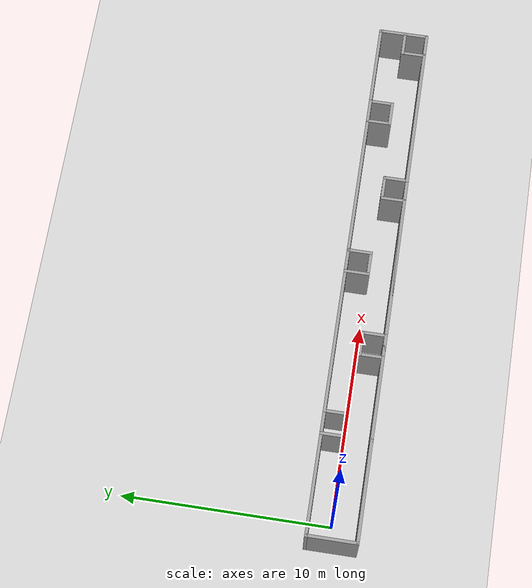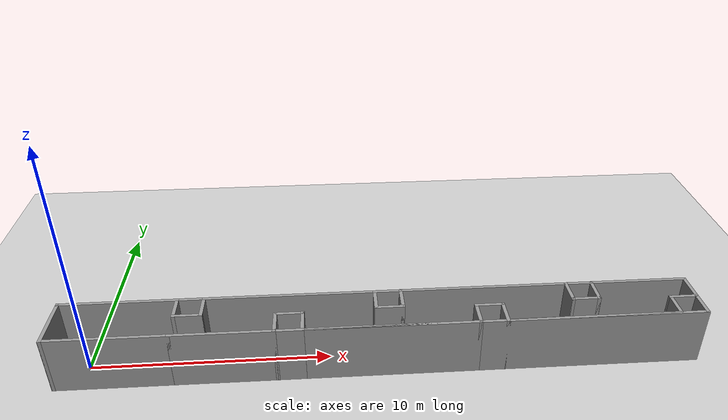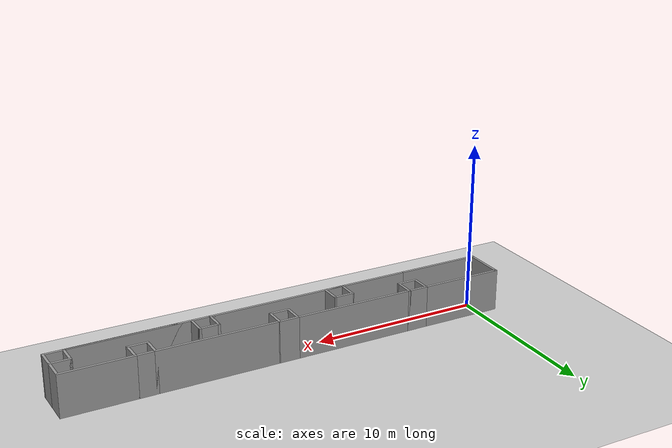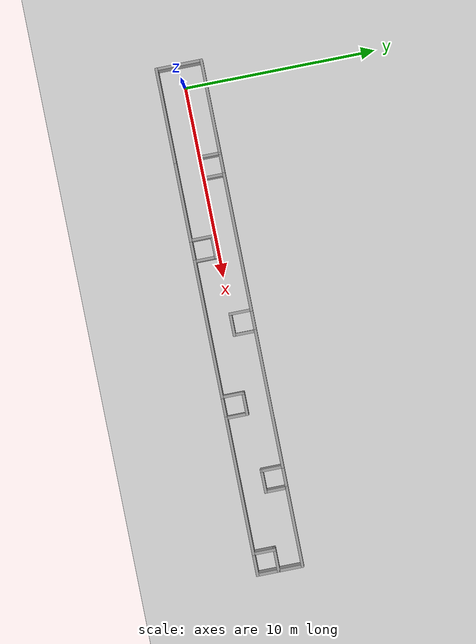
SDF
<sdf version="1.6">
 <world name="default">
  <light name="sun" type="directional">
   <pose>0 0 10 0 -0 0</pose>
   <diffuse>0.8 0.8 0.8 1</diffuse>
   <specular>0.1 0.1 0.1 1</specular>
   <attenuation>
    <range>1000</range>
    <constant>0.9</constant>
    <linear>0.01</linear>
    <quadratic>0.001</quadratic>
   </attenuation>
   <direction>-0.5 0.5 -1</direction>
  </light>
  <model name="ground_plane">
   <static>1</static>
   <link name="link">
    <collision name="collision">
     <geometry><plane><normal>0 0 1</normal><size>100 100</size></plane></geometry>
     <surface><friction><ode><mu>100</mu><mu2>50</mu2></ode></friction></surface>
    </collision>
    <visual name="visual">
     <cast_shadows>0</cast_shadows>
     <geometry><plane><normal>0 0 1</normal><size>100 100</size></plane></geometry>
     <material>
      <script><uri>file://media/materials/scripts/gazebo.material</uri><name>Gazebo/Grey</name></script>
     </material>
    </visual>
   </link>
  </model>
  <gravity>0 0 -9.8</gravity>
  <magnetic_field>6e-06 2.3e-05 -4.2e-05</magnetic_field>
  <atmosphere type="adiabatic"/>
  <physics name="default_physics" default="0" type="ode">
   <max_step_size>0.001</max_step_size>
   <real_time_factor>1</real_time_factor>
   <real_time_update_rate>1000</real_time_update_rate>
  </physics>
  <scene><ambient>0.4 0.4 0.4 1</ambient><background>0.7 0.7 0.7 1</background><shadows>1</shadows></scene>
  <spherical_coordinates>
   <surface_model>EARTH_WGS84</surface_model>
   <latitude_deg>0</latitude_deg>
   <longitude_deg>0</longitude_deg>
   <elevation>0</elevation>
   <heading_deg>0</heading_deg>
  </spherical_coordinates>
  <model name="medium_s_world">
   <pose>12.1054 -0.077905 0 0 -0 0</pose>
   <link name="Wall_133">
    <collision name="Wall_133_Collision">
     <geometry><box><size>2.5 0.15 2.5</size></box></geometry>
     <pose>0 0 1.25 0 -0 0</pose>
    </collision>
    <visual name="Wall_133_Visual">
     <pose>0 0 1.25 0 -0 0</pose>
     <geometry><box><size>2.5 0.15 2.5</size></box></geometry>
     <material>
      <script><uri>file://media/materials/scripts/gazebo.material</uri><name>Gazebo/Grey</name></script>
      <ambient>1 1 1 1</ambient>
     </material>
    </visual>
    <pose>-13.225 0 0 0 0 -1.5708</pose>
   </link>
   <link name="Wall_134">
    <collision name="Wall_134_Collision">
     <geometry><box><size>5 0.15 2.5</size></box></geometry>
     <pose>0 0 1.25 0 -0 0</pose>
    </collision>
    <visual name="Wall_134_Visual">
     <pose>0 0 1.25 0 -0 0</pose>
     <geometry><box><size>5 0.15 2.5</size></box></geometry>
     <material>
      <script><uri>file://media/materials/scripts/gazebo.material</uri><name>Gazebo/Grey</name></script>
      <ambient>1 1 1 1</ambient>
     </material>
    </visual>
    <pose>-10.8 -1.175 0 0 -0 0</pose>
   </link>
   <link name="Wall_138">
    <collision name="Wall_138_Collision">
     <geometry><box><size>5 0.15 2.5</size></box></geometry>
     <pose>0 0 1.25 0 -0 0</pose>
    </collision>
    <visual name="Wall_138_Visual">
     <pose>0 0 1.25 0 -0 0</pose>
     <geometry><box><size>5 0.15 2.5</size></box></geometry>
     <material>
      <script><uri>file://media/materials/scripts/gazebo.material</uri><name>Gazebo/Grey</name></script>
      <ambient>1 1 1 1</ambient>
     </material>
    </visual>
    <pose>-10.8 1.175 0 0 -0 3.14159</pose>
   </link>
   <link name="Wall_140">
    <collision name="Wall_140_Collision">
     <geometry><box><size>1.25 0.15 2.5</size></box></geometry>
     <pose>0 0 1.25 0 -0 0</pose>
    </collision>
    <visual name="Wall_140_Visual">
     <pose>0 0 1.25 0 -0 0</pose>
     <geometry><box><size>1.25 0.15 2.5</size></box></geometry>
     <material>
      <script><uri>file://media/materials/scripts/gazebo.material</uri><name>Gazebo/Grey</name></script>
      <ambient>1 1 1 1</ambient>
     </material>
    </visual>
    <pose>-7.825 1.175 0 0 -0 0</pose>
   </link>
   <link name="Wall_141">
    <collision name="Wall_141_Collision">
     <geometry><box><size>1.25 0.15 2.5</size></box></geometry>
     <pose>0 0 1.25 0 -0 0</pose>
    </collision>
    <visual name="Wall_141_Visual">
     <pose>0 0 1.25 0 -0 0</pose>
     <geometry><box><size>1.25 0.15 2.5</size></box></geometry>
     <material>
      <script><uri>file://media/materials/scripts/gazebo.material</uri><name>Gazebo/Grey</name></script>
      <ambient>1 1 1 1</ambient>
     </material>
    </visual>
    <pose>-7.275 0.625 0 0 0 -1.5708</pose>
   </link>
   <link name="Wall_142">
    <collision name="Wall_142_Collision">
     <geometry><box><size>1.25 0.15 2.5</size></box></geometry>
     <pose>0 0 1.25 0 -0 0</pose>
    </collision>
    <visual name="Wall_142_Visual">
     <pose>0 0 1.25 0 -0 0</pose>
     <geometry><box><size>1.25 0.15 2.5</size></box></geometry>
     <material>
      <script><uri>file://media/materials/scripts/gazebo.material</uri><name>Gazebo/Grey</name></script>
      <ambient>1 1 1 1</ambient>
     </material>
    </visual>
    <pose>-7.825 0.075 0 0 -0 3.14159</pose>
   </link>
   <link name="Wall_143">
    <collision name="Wall_143_Collision">
     <geometry><box><size>1.25 0.15 2.5</size></box></geometry>
     <pose>0 0 1.25 0 -0 0</pose>
    </collision>
    <visual name="Wall_143_Visual">
     <pose>0 0 1.25 0 -0 0</pose>
     <geometry><box><size>1.25 0.15 2.5</size></box></geometry>
     <material>
      <script><uri>file://media/materials/scripts/gazebo.material</uri><name>Gazebo/Grey</name></script>
      <ambient>1 1 1 1</ambient>
     </material>
    </visual>
    <pose>-8.375 0.625 0 0 -0 1.5708</pose>
   </link>
   <link name="Wall_145">
    <collision name="Wall_145_Collision">
     <geometry><box><size>7.25 0.15 2.5</size></box></geometry>
     <pose>0 0 1.25 0 -0 0</pose>
    </collision>
    <visual name="Wall_145_Visual">
     <pose>0 0 1.25 0 -0 0</pose>
     <geometry><box><size>7.25 0.15 2.5</size></box></geometry>
     <material>
      <script><uri>file://media/materials/scripts/gazebo.material</uri><name>Gazebo/Grey</name></script>
      <ambient>1 1 1 1</ambient>
     </material>
    </visual>
    <pose>-3.725 1.175 0 0 -0 0</pose>
   </link>
   <link name="Wall_146">
    <collision name="Wall_146_Collision">
     <geometry><box><size>1.25 0.15 2.5</size></box></geometry>
     <pose>0 0 1.25 0 -0 0</pose>
    </collision>
    <visual name="Wall_146_Visual">
     <pose>0 0 1.25 0 -0 0</pose>
     <geometry><box><size>1.25 0.15 2.5</size></box></geometry>
     <material>
      <script><uri>file://media/materials/scripts/gazebo.material</uri><name>Gazebo/Grey</name></script>
      <ambient>1 1 1 1</ambient>
     </material>
    </visual>
    <pose>-0.175 0.625 0 0 0 -1.5708</pose>
   </link>
   <link name="Wall_147">
    <collision name="Wall_147_Collision">
     <geometry><box><size>1.25 0.15 2.5</size></box></geometry>
     <pose>0 0 1.25 0 -0 0</pose>
    </collision>
    <visual name="Wall_147_Visual">
     <pose>0 0 1.25 0 -0 0</pose>
     <geometry><box><size>1.25 0.15 2.5</size></box></geometry>
     <material>
      <script><uri>file://media/materials/scripts/gazebo.material</uri><name>Gazebo/Grey</name></script>
      <ambient>1 1 1 1</ambient>
     </material>
    </visual>
    <pose>0.375 0.075 0 0 -0 0</pose>
   </link>
   <link name="Wall_148">
    <collision name="Wall_148_Collision">
     <geometry><box><size>1.25 0.15 2.5</size></box></geometry>
     <pose>0 0 1.25 0 -0 0</pose>
    </collision>
    <visual name="Wall_148_Visual">
     <pose>0 0 1.25 0 -0 0</pose>
     <geometry><box><size>1.25 0.15 2.5</size></box></geometry>
     <material>
      <script><uri>file://media/materials/scripts/gazebo.material</uri><name>Gazebo/Grey</name></script>
      <ambient>1 1 1 1</ambient>
     </material>
    </visual>
    <pose>0.925 0.625 0 0 -0 1.5708</pose>
   </link>
   <link name="Wall_149">
    <collision name="Wall_149_Collision">
     <geometry><box><size>1.25 0.15 2.5</size></box></geometry>
     <pose>0 0 1.25 0 -0 0</pose>
    </collision>
    <visual name="Wall_149_Visual">
     <pose>0 0 1.25 0 -0 0</pose>
     <geometry><box><size>1.25 0.15 2.5</size></box></geometry>
     <material>
      <script><uri>file://media/materials/scripts/gazebo.material</uri><name>Gazebo/Grey</name></script>
      <ambient>1 1 1 1</ambient>
     </material>
    </visual>
    <pose>0.375 1.175 0 0 -0 3.14159</pose>
   </link>
   <link name="Wall_151">
    <collision name="Wall_151_Collision">
     <geometry><box><size>7.25 0.15 2.5</size></box></geometry>
     <pose>0 0 1.25 0 -0 0</pose>
    </collision>
    <visual name="Wall_151_Visual">
     <pose>0 0 1.25 0 -0 0</pose>
     <geometry><box><size>7.25 0.15 2.5</size></box></geometry>
     <material>
      <script><uri>file://media/materials/scripts/gazebo.material</uri><name>Gazebo/Grey</name></script>
      <ambient>1 1 1 1</ambient>
     </material>
    </visual>
    <pose>4.475 1.175 0 0 -0 0</pose>
   </link>
   <link name="Wall_152">
    <collision name="Wall_152_Collision">
     <geometry><box><size>1.25 0.15 2.5</size></box></geometry>
     <pose>0 0 1.25 0 -0 0</pose>
    </collision>
    <visual name="Wall_152_Visual">
     <pose>0 0 1.25 0 -0 0</pose>
     <geometry><box><size>1.25 0.15 2.5</size></box></geometry>
     <material>
      <script><uri>file://media/materials/scripts/gazebo.material</uri><name>Gazebo/Grey</name></script>
      <ambient>1 1 1 1</ambient>
     </material>
    </visual>
    <pose>8.025 0.625 0 0 0 -1.5708</pose>
   </link>
   <link name="Wall_153">
    <collision name="Wall_153_Collision">
     <geometry><box><size>1.25 0.15 2.5</size></box></geometry>
     <pose>0 0 1.25 0 -0 0</pose>
    </collision>
    <visual name="Wall_153_Visual">
     <pose>0 0 1.25 0 -0 0</pose>
     <geometry><box><size>1.25 0.15 2.5</size></box></geometry>
     <material>
      <script><uri>file://media/materials/scripts/gazebo.material</uri><name>Gazebo/Grey</name></script>
      <ambient>1 1 1 1</ambient>
     </material>
    </visual>
    <pose>8.575 0.075 0 0 -0 0</pose>
   </link>
   <link name="Wall_154">
    <collision name="Wall_154_Collision">
     <geometry><box><size>1.25 0.15 2.5</size></box></geometry>
     <pose>0 0 1.25 0 -0 0</pose>
    </collision>
    <visual name="Wall_154_Visual">
     <pose>0 0 1.25 0 -0 0</pose>
     <geometry><box><size>1.25 0.15 2.5</size></box></geometry>
     <material>
      <script><uri>file://media/materials/scripts/gazebo.material</uri><name>Gazebo/Grey</name></script>
      <ambient>1 1 1 1</ambient>
     </material>
    </visual>
    <pose>9.125 0.625 0 0 -0 1.5708</pose>
   </link>
   <link name="Wall_155">
    <collision name="Wall_155_Collision">
     <geometry><box><size>1.25 0.15 2.5</size></box></geometry>
     <pose>0 0 1.25 0 -0 0</pose>
    </collision>
    <visual name="Wall_155_Visual">
     <pose>0 0 1.25 0 -0 0</pose>
     <geometry><box><size>1.25 0.15 2.5</size></box></geometry>
     <material>
      <script><uri>file://media/materials/scripts/gazebo.material</uri><name>Gazebo/Grey</name></script>
      <ambient>1 1 1 1</ambient>
     </material>
    </visual>
    <pose>8.575 1.175 0 0 -0 3.14159</pose>
   </link>
   <link name="Wall_157">
    <collision name="Wall_157_Collision">
     <geometry><box><size>4.25 0.15 2.5</size></box></geometry>
     <pose>0 0 1.25 0 -0 0</pose>
    </collision>
    <visual name="Wall_157_Visual">
     <pose>0 0 1.25 0 -0 0</pose>
     <geometry><box><size>4.25 0.15 2.5</size></box></geometry>
     <material>
      <script><uri>file://media/materials/scripts/gazebo.material</uri><name>Gazebo/Grey</name></script>
      <ambient>1 1 1 1</ambient>
     </material>
    </visual>
    <pose>-6.325 -1.175 0 0 -0 0</pose>
   </link>
   <link name="Wall_158">
    <collision name="Wall_158_Collision">
     <geometry><box><size>1.25 0.15 2.5</size></box></geometry>
     <pose>0 0 1.25 0 -0 0</pose>
    </collision>
    <visual name="Wall_158_Visual">
     <pose>0 0 1.25 0 -0 0</pose>
     <geometry><box><size>1.25 0.15 2.5</size></box></geometry>
     <material>
      <script><uri>file://media/materials/scripts/gazebo.material</uri><name>Gazebo/Grey</name></script>
      <ambient>1 1 1 1</ambient>
     </material>
    </visual>
    <pose>-4.275 -0.625 0 0 -0 1.5708</pose>
   </link>
   <link name="Wall_159">
    <collision name="Wall_159_Collision">
     <geometry><box><size>1.25 0.15 2.5</size></box></geometry>
     <pose>0 0 1.25 0 -0 0</pose>
    </collision>
    <visual name="Wall_159_Visual">
     <pose>0 0 1.25 0 -0 0</pose>
     <geometry><box><size>1.25 0.15 2.5</size></box></geometry>
     <material>
      <script><uri>file://media/materials/scripts/gazebo.material</uri><name>Gazebo/Grey</name></script>
      <ambient>1 1 1 1</ambient>
     </material>
    </visual>
    <pose>-3.725 -0.075 0 0 -0 0</pose>
   </link>
   <link name="Wall_160">
    <collision name="Wall_160_Collision">
     <geometry><box><size>1.25 0.15 2.5</size></box></geometry>
     <pose>0 0 1.25 0 -0 0</pose>
    </collision>
    <visual name="Wall_160_Visual">
     <pose>0 0 1.25 0 -0 0</pose>
     <geometry><box><size>1.25 0.15 2.5</size></box></geometry>
     <material>
      <script><uri>file://media/materials/scripts/gazebo.material</uri><name>Gazebo/Grey</name></script>
      <ambient>1 1 1 1</ambient>
     </material>
    </visual>
    <pose>-3.175 -0.625 0 0 0 -1.5708</pose>
   </link>
   <link name="Wall_161">
    <collision name="Wall_161_Collision">
     <geometry><box><size>1.25 0.15 2.5</size></box></geometry>
     <pose>0 0 1.25 0 -0 0</pose>
    </collision>
    <visual name="Wall_161_Visual">
     <pose>0 0 1.25 0 -0 0</pose>
     <geometry><box><size>1.25 0.15 2.5</size></box></geometry>
     <material>
      <script><uri>file://media/materials/scripts/gazebo.material</uri><name>Gazebo/Grey</name></script>
      <ambient>1 1 1 1</ambient>
     </material>
    </visual>
    <pose>-3.725 -1.175 0 0 -0 3.14159</pose>
   </link>
   <link name="Wall_163">
    <collision name="Wall_163_Collision">
     <geometry><box><size>7.25 0.15 2.5</size></box></geometry>
     <pose>0 0 1.25 0 -0 0</pose>
    </collision>
    <visual name="Wall_163_Visual">
     <pose>0 0 1.25 0 -0 0</pose>
     <geometry><box><size>7.25 0.15 2.5</size></box></geometry>
     <material>
      <script><uri>file://media/materials/scripts/gazebo.material</uri><name>Gazebo/Grey</name></script>
      <ambient>1 1 1 1</ambient>
     </material>
    </visual>
    <pose>0.375 -1.175 0 0 -0 0</pose>
   </link>
   <link name="Wall_164">
    <collision name="Wall_164_Collision">
     <geometry><box><size>1.25 0.15 2.5</size></box></geometry>
     <pose>0 0 1.25 0 -0 0</pose>
    </collision>
    <visual name="Wall_164_Visual">
     <pose>0 0 1.25 0 -0 0</pose>
     <geometry><box><size>1.25 0.15 2.5</size></box></geometry>
     <material>
      <script><uri>file://media/materials/scripts/gazebo.material</uri><name>Gazebo/Grey</name></script>
      <ambient>1 1 1 1</ambient>
     </material>
    </visual>
    <pose>3.925 -0.625 0 0 -0 1.5708</pose>
   </link>
   <link name="Wall_165">
    <collision name="Wall_165_Collision">
     <geometry><box><size>1.25 0.15 2.5</size></box></geometry>
     <pose>0 0 1.25 0 -0 0</pose>
    </collision>
    <visual name="Wall_165_Visual">
     <pose>0 0 1.25 0 -0 0</pose>
     <geometry><box><size>1.25 0.15 2.5</size></box></geometry>
     <material>
      <script><uri>file://media/materials/scripts/gazebo.material</uri><name>Gazebo/Grey</name></script>
      <ambient>1 1 1 1</ambient>
     </material>
    </visual>
    <pose>4.475 -0.075 0 0 -0 0</pose>
   </link>
   <link name="Wall_166">
    <collision name="Wall_166_Collision">
     <geometry><box><size>1.25 0.15 2.5</size></box></geometry>
     <pose>0 0 1.25 0 -0 0</pose>
    </collision>
    <visual name="Wall_166_Visual">
     <pose>0 0 1.25 0 -0 0</pose>
     <geometry><box><size>1.25 0.15 2.5</size></box></geometry>
     <material>
      <script><uri>file://media/materials/scripts/gazebo.material</uri><name>Gazebo/Grey</name></script>
      <ambient>1 1 1 1</ambient>
     </material>
    </visual>
    <pose>5.025 -0.625 0 0 0 -1.5708</pose>
   </link>
   <link name="Wall_167">
    <collision name="Wall_167_Collision">
     <geometry><box><size>7.25 0.15 2.5</size></box></geometry>
     <pose>0 0 1.25 0 -0 0</pose>
    </collision>
    <visual name="Wall_167_Visual">
     <pose>0 0 1.25 0 -0 0</pose>
     <geometry><box><size>7.25 0.15 2.5</size></box></geometry>
     <material>
      <script><uri>file://media/materials/scripts/gazebo.material</uri><name>Gazebo/Grey</name></script>
      <ambient>1 1 1 1</ambient>
     </material>
    </visual>
    <pose>8.575 -1.175 0 0 -0 0</pose>
   </link>
   <link name="Wall_168">
    <collision name="Wall_168_Collision">
     <geometry><box><size>1.25 0.15 2.5</size></box></geometry>
     <pose>0 0 1.25 0 -0 0</pose>
    </collision>
    <visual name="Wall_168_Visual">
     <pose>0 0 1.25 0 -0 0</pose>
     <geometry><box><size>1.25 0.15 2.5</size></box></geometry>
     <material>
      <script><uri>file://media/materials/scripts/gazebo.material</uri><name>Gazebo/Grey</name></script>
      <ambient>1 1 1 1</ambient>
     </material>
    </visual>
    <pose>12.125 -0.625 0 0 -0 1.5708</pose>
   </link>
   <link name="Wall_169">
    <collision name="Wall_169_Collision">
     <geometry><box><size>1.25 0.15 2.5</size></box></geometry>
     <pose>0 0 1.25 0 -0 0</pose>
    </collision>
    <visual name="Wall_169_Visual">
     <pose>0 0 1.25 0 -0 0</pose>
     <geometry><box><size>1.25 0.15 2.5</size></box></geometry>
     <material>
      <script><uri>file://media/materials/scripts/gazebo.material</uri><name>Gazebo/Grey</name></script>
      <ambient>1 1 1 1</ambient>
     </material>
    </visual>
    <pose>12.675 -0.075 0 0 -0 0</pose>
   </link>
   <link name="Wall_170">
    <collision name="Wall_170_Collision">
     <geometry><box><size>1.25 0.15 2.5</size></box></geometry>
     <pose>0 0 1.25 0 -0 0</pose>
    </collision>
    <visual name="Wall_170_Visual">
     <pose>0 0 1.25 0 -0 0</pose>
     <geometry><box><size>1.25 0.15 2.5</size></box></geometry>
     <material>
      <script><uri>file://media/materials/scripts/gazebo.material</uri><name>Gazebo/Grey</name></script>
      <ambient>1 1 1 1</ambient>
     </material>
    </visual>
    <pose>13.225 -0.625 0 0 0 -1.5708</pose>
   </link>
   <link name="Wall_171">
    <collision name="Wall_171_Collision">
     <geometry><box><size>17.65 0.15 2.5</size></box></geometry>
     <pose>0 0 1.25 0 -0 0</pose>
    </collision>
    <visual name="Wall_171_Visual">
     <pose>0 0 1.25 0 -0 0</pose>
     <geometry><box><size>17.65 0.15 2.5</size></box></geometry>
     <material>
      <script><uri>file://media/materials/scripts/gazebo.material</uri><name>Gazebo/Grey</name></script>
      <ambient>1 1 1 1</ambient>
     </material>
    </visual>
    <pose>4.475 -1.175 0 0 -0 3.14159</pose>
   </link>
   <link name="Wall_173">
    <collision name="Wall_173_Collision">
     <geometry><box><size>4.25 0.15 2.5</size></box></geometry>
     <pose>0 0 1.25 0 -0 0</pose>
    </collision>
    <visual name="Wall_173_Visual">
     <pose>0 0 1.25 0 -0 0</pose>
     <geometry><box><size>4.25 0.15 2.5</size></box></geometry>
     <material>
      <script><uri>file://media/materials/scripts/gazebo.material</uri><name>Gazebo/Grey</name></script>
      <ambient>1 1 1 1</ambient>
     </material>
    </visual>
    <pose>11.175 1.175 0 0 -0 0</pose>
   </link>
   <link name="Wall_174">
    <collision name="Wall_174_Collision">
     <geometry><box><size>1.4 0.15 2.5</size></box></geometry>
     <pose>0 0 1.25 0 -0 0</pose>
    </collision>
    <visual name="Wall_174_Visual">
     <pose>0 0 1.25 0 -0 0</pose>
     <geometry><box><size>1.4 0.15 2.5</size></box></geometry>
     <material>
      <script><uri>file://media/materials/scripts/gazebo.material</uri><name>Gazebo/Grey</name></script>
      <ambient>1 1 1 1</ambient>
     </material>
    </visual>
    <pose>13.225 0.55 0 0 0 -1.5708</pose>
   </link>
   <static>1</static>
  </model>
 </world>
</sdf>
